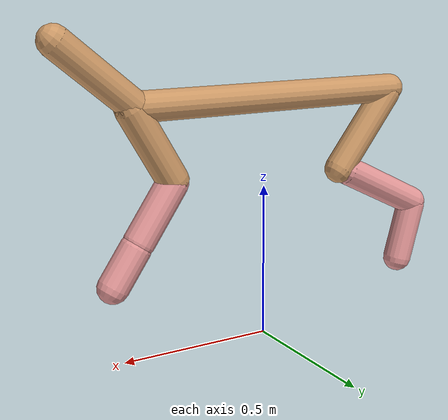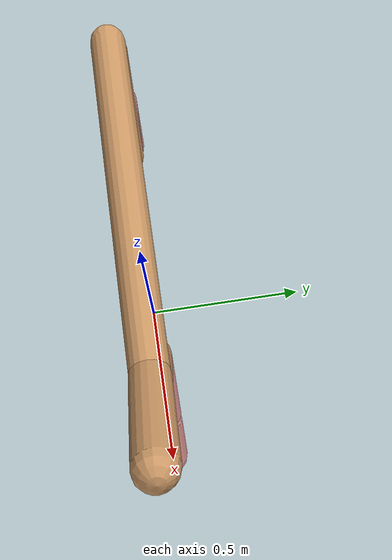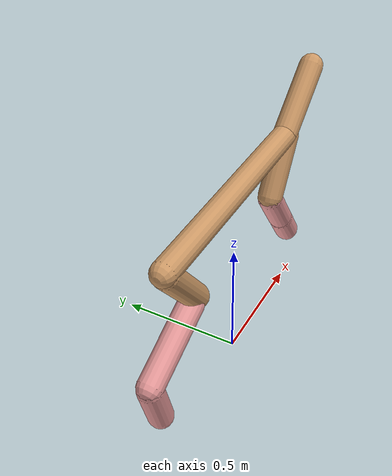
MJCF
<mujoco model="cheetah">
  <compiler angle="radian" coordinate="local" inertiafromgeom="true" settotalmass="14" />
  <default>
    <joint armature=".1" damping=".01" limited="true" solimplimit="0 .8 .03" solreflimit=".02 1" stiffness="8" />
    <geom conaffinity="0" condim="3" contype="1" friction="0.8 .1 .1" rgba="0.8 0.6 .4 1" solimp="0.0 0.8 0.01" solref="0.02 1" />
    <motor ctrllimited="true" ctrlrange="-1 1" />
  </default>
  <size nstack="300000" nuser_geom="1" />
  <option gravity="0 0 -9.81" timestep="0.01" />
  <worldbody>
    <body name="torso" pos="0.0 0.0 0.785946252591633">
      <joint armature="0" axis="1 0 0" damping="0" limited="false" name="ignorex" pos="0 0 0" stiffness="0" type="slide" />
      <joint armature="0" axis="0 0 1" damping="0" limited="false" name="ignorez" pos="0 0 0" stiffness="0" type="slide" />
      <joint armature="0" axis="0 1 0" damping="0" limited="false" name="ignorey" pos="0 0 0" stiffness="0" type="hinge" />
      <geom fromto="-0.5 0.0 0.0 0.4550773412658212 0.0 0.0" name="torso" size="0.04751713489797376" type="capsule" />
      <geom axisangle="0 1 0 .87" name="head" pos="0.5550773412658212 0.0 0.1" size="0.0486206339569089 0.15" type="capsule" />

      <body name="bthigh" pos="-.5 0 0">
        <joint axis="0 1 0" damping="6" name="bthigh" pos="0 0 0" range="-.52 1.05" stiffness="240" type="hinge" />
        <geom axisangle="0 1 0 -3.8" name="bthigh" pos="0.10643927244379199 0.0 -0.13837105417692958" size="0.04882080912159766 0.1555611920557515" type="capsule" />
        <body name="bshin" pos="0.17287854488758397 0.0 -0.26674210835385914">
          <joint axis="0 1 0" damping="4.5" name="bshin" pos="0 0 0" range="-.785 .785" stiffness="180" type="hinge" />
          <geom axisangle="0 1 0 -2.03" name="bshin" pos="-0.14977194897658946 0.0 -0.07488597448829473" rgba="0.9 0.6 0.6 1" size="0.04882080912159766 0.16092537109215674" type="capsule" />
          <body name="bfoot" pos="-0.29954389795317893 0.0 -0.14977194897658946">
            <joint axis="0 1 0" damping="3" name="bfoot" pos="0 0 0" range="-.4 .785" stiffness="120" type="hinge" />
            <geom axisangle="0 1 0 -.27" name="bfoot" pos="0.032022952924836735 0.0 -0.10354088112363878" rgba="0.9 0.6 0.6 1" size="0.04882080912159766 0.10084656588441822" type="capsule" />
            <inertial mass="10" />
          </body>
        </body>
      </body>
      <body name="fthigh" pos="0.4550773412658212 0.0 0.0">
        <joint axis="0 1 0" damping="4.5" name="fthigh" pos="0 0 0" range="-1.5 0.8" stiffness="180" type="hinge" />
        <geom axisangle="0 1 0 .52" name="fthigh" pos="-0.06844498273702848 0.0 -0.11733425612062023" size="0.05029005585044679 0.12991385853879153" type="capsule" />
        <body name="fshin" pos="-0.13688996547405696 0.0 -0.23466851224124047">
          <joint axis="0 1 0" damping="3" name="fshin" pos="0 0 0" range="-1.2 1.1" stiffness="120" type="hinge" />
          <geom axisangle="0 1 0 -.6" name="fshin" pos="0.06355990896709256 0.0 -0.08800602780058969" rgba="0.9 0.6 0.6 1" size="0.05029005585044679 0.10354036845948797" type="capsule" />
          <body name="ffoot" pos="0.12711981793418511 0.0 -0.17601205560117938">
            <joint axis="0 1 0" damping="1.5" name="ffoot" pos="0 0 0" range="-3.1 -0.3" stiffness="60" type="hinge" />
            <geom axisangle="0 1 0 -.6" name="ffoot" pos="0.04412165556683377 0.0 -0.06863368643729699" rgba="0.9 0.6 0.6 1" size="0.05029005585044679 0.06837571502041659" type="capsule" />
            <inertial mass="10" />
          </body>
        </body>
      </body>
    </body>
  </worldbody>
  <actuator>
    <motor gear="120" joint="bthigh" name="bthigh" />
    <motor gear="90" joint="bshin" name="bshin" />
    <motor gear="60" joint="bfoot" name="bfoot" />
    <motor gear="120" joint="fthigh" name="fthigh" />
    <motor gear="60" joint="fshin" name="fshin" />
    <motor gear="30" joint="ffoot" name="ffoot" />
  </actuator>
</mujoco>
